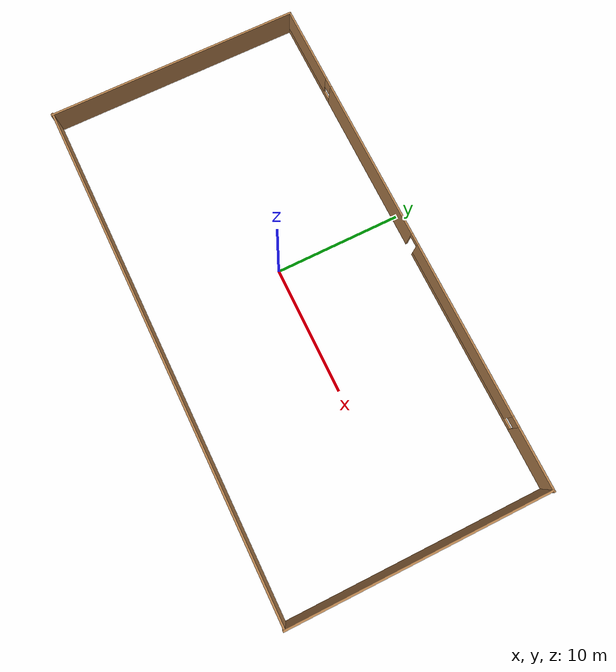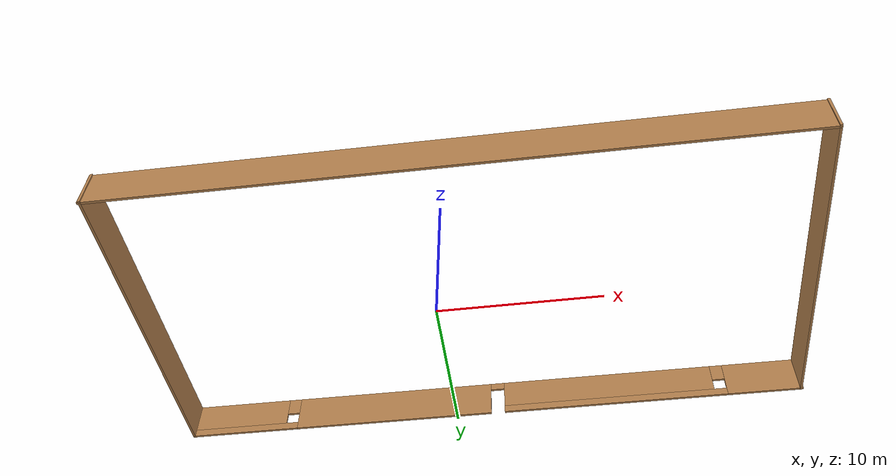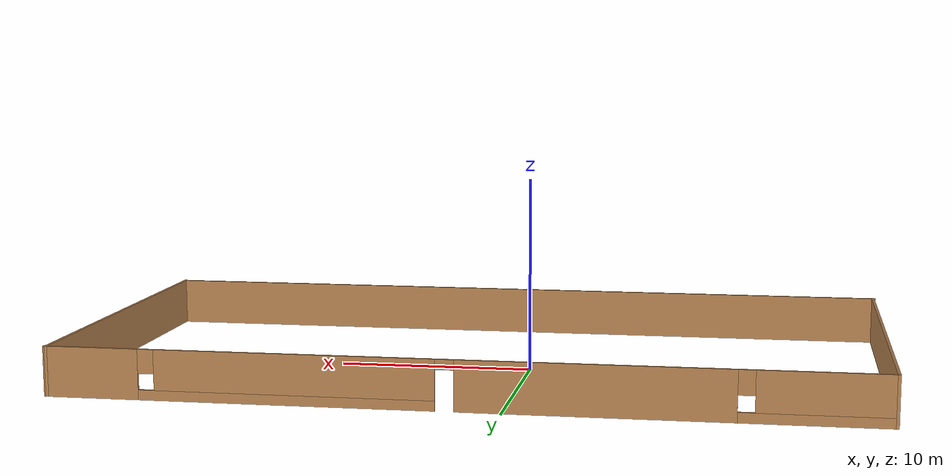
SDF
<?xml version='1.0'?>
<sdf version='1.6'>
  <model name='WoodenRoom'>
    <pose frame=''>2.16871 -0.351448 0 0 -0 0</pose>
    <link name='Wall_21'>
      <collision name='Wall_21_Collision'>
        <geometry>
          <box>
            <size>20.2938 0.15 2.5</size>
          </box>
        </geometry>
        <pose frame=''>0 0 1.25 0 -0 0</pose>
      </collision>
      <visual name='Wall_21_Visual'>
        <pose frame=''>0 0 1.25 0 -0 0</pose>
        <geometry>
          <box>
            <size>20.2938 0.15 2.5</size>
          </box>
        </geometry>
        <material>
          <script>
            <uri>file://media/materials/scripts/gazebo.material</uri>
            <name>Gazebo/Wood</name>
          </script>
          <ambient>1 1 1 1</ambient>
        </material>
        <meta>
          <layer>0</layer>
        </meta>
      </visual>
      <pose frame=''>-20.2326 -0.000253 0 0 -0 -1.5708</pose>
    </link>
    <link name='Wall_22'>
      <collision name='Wall_22_Collision'>
        <geometry>
          <box>
            <size>40.6151 0.15 2.5</size>
          </box>
        </geometry>
        <pose frame=''>0 0 1.25 0 -0 0</pose>
      </collision>
      <visual name='Wall_22_Visual'>
        <pose frame=''>0 0 1.25 0 -0 0</pose>
        <geometry>
          <box>
            <size>40.6151 0.15 2.5</size>
          </box>
        </geometry>
        <material>
          <script>
            <uri>file://media/materials/scripts/gazebo.material</uri>
            <name>Gazebo/Wood</name>
          </script>
          <ambient>1 1 1 1</ambient>
        </material>
        <meta>
          <layer>0</layer>
        </meta>
      </visual>
      <pose frame=''>-0.070358 -10.0015 0 0 -0 0</pose>
    </link>
    <link name='Wall_23'>
      <collision name='Wall_23_Collision'>
        <geometry>
          <box>
            <size>20.2852 0.15 2.5</size>
          </box>
        </geometry>
        <pose frame=''>0 0 1.25 0 -0 0</pose>
      </collision>
      <visual name='Wall_23_Visual'>
        <pose frame=''>0 0 1.25 0 -0 0</pose>
        <geometry>
          <box>
            <size>20.2852 0.15 2.5</size>
          </box>
        </geometry>
        <material>
          <script>
            <uri>file://media/materials/scripts/gazebo.material</uri>
            <name>Gazebo/Wood</name>
          </script>
          <ambient>1 1 1 1</ambient>
        </material>
        <meta>
          <layer>0</layer>
        </meta>
      </visual>
      <pose frame=''>20.1974 0.004335 0 0 -0 1.5673</pose>
    </link>
    <link name='Wall_24'>
      <pose frame=''>0.070358 10.0714 0 0 -0 3.14159</pose>
      <visual name='Wall_24_Visual_0'>
        <pose frame=''>-17.9064 0 1.25 0 -0 0</pose>
        <geometry>
          <box>
            <size>4.80226 0.15 2.5</size>
          </box>
        </geometry>
        <material>
          <script>
            <uri>file://media/materials/scripts/gazebo.material</uri>
            <name>Gazebo/Wood</name>
          </script>
          <ambient>1 1 1 1</ambient>
        </material>
        <meta>
          <layer>0</layer>
        </meta>
      </visual>
      <collision name='Wall_24_Collision_0'>
        <geometry>
          <box>
            <size>4.80226 0.15 2.5</size>
          </box>
        </geometry>
        <pose frame=''>-17.9064 0 1.25 0 -0 0</pose>
      </collision>
      <visual name='Wall_24_Visual_1'>
        <pose frame=''>6.55974 0 1.25 0 -0 0</pose>
        <geometry>
          <box>
            <size>13.1746 0.15 2.5</size>
          </box>
        </geometry>
        <material>
          <script>
            <uri>file://media/materials/scripts/gazebo.material</uri>
            <name>Gazebo/Wood</name>
          </script>
          <ambient>1 1 1 1</ambient>
        </material>
        <meta>
          <layer>0</layer>
        </meta>
      </visual>
      <collision name='Wall_24_Collision_1'>
        <geometry>
          <box>
            <size>13.1746 0.15 2.5</size>
          </box>
        </geometry>
        <pose frame=''>6.55974 0 1.25 0 -0 0</pose>
      </collision>
      <visual name='Wall_24_Visual_2'>
        <pose frame=''>-8.21642 0 0.25 0 -0 0</pose>
        <geometry>
          <box>
            <size>14.5778 0.15 0.5</size>
          </box>
        </geometry>
        <material>
          <script>
            <uri>file://media/materials/scripts/gazebo.material</uri>
            <name>Gazebo/Wood</name>
          </script>
          <ambient>1 1 1 1</ambient>
        </material>
        <meta>
          <layer>0</layer>
        </meta>
      </visual>
      <collision name='Wall_24_Collision_2'>
        <geometry>
          <box>
            <size>14.5778 0.15 0.5</size>
          </box>
        </geometry>
        <pose frame=''>-8.21642 0 0.25 0 -0 0</pose>
      </collision>
      <visual name='Wall_24_Visual_3'>
        <pose frame=''>16.7273 0 0.25 0 -0 0</pose>
        <geometry>
          <box>
            <size>7.16054 0.15 0.5</size>
          </box>
        </geometry>
        <material>
          <script>
            <uri>file://media/materials/scripts/gazebo.material</uri>
            <name>Gazebo/Wood</name>
          </script>
          <ambient>1 1 1 1</ambient>
        </material>
        <meta>
          <layer>0</layer>
        </meta>
      </visual>
      <collision name='Wall_24_Collision_3'>
        <geometry>
          <box>
            <size>7.16054 0.15 0.5</size>
          </box>
        </geometry>
        <pose frame=''>16.7273 0 0.25 0 -0 0</pose>
      </collision>
      <visual name='Wall_24_Visual_4'>
        <pose frame=''>-7.81642 0 1.5 0 -0 0</pose>
        <geometry>
          <box>
            <size>13.7778 0.15 2</size>
          </box>
        </geometry>
        <material>
          <script>
            <uri>file://media/materials/scripts/gazebo.material</uri>
            <name>Gazebo/Wood</name>
          </script>
          <ambient>1 1 1 1</ambient>
        </material>
        <meta>
          <layer>0</layer>
        </meta>
      </visual>
      <collision name='Wall_24_Collision_4'>
        <geometry>
          <box>
            <size>13.7778 0.15 2</size>
          </box>
        </geometry>
        <pose frame=''>-7.81642 0 1.5 0 -0 0</pose>
      </collision>
      <visual name='Wall_24_Visual_5'>
        <pose frame=''>-7.81642 0 1.5 0 -0 0</pose>
        <geometry>
          <box>
            <size>13.7778 0.15 2</size>
          </box>
        </geometry>
        <material>
          <script>
            <uri>file://media/materials/scripts/gazebo.material</uri>
            <name>Gazebo/Wood</name>
          </script>
          <ambient>1 1 1 1</ambient>
        </material>
        <meta>
          <layer>0</layer>
        </meta>
      </visual>
      <collision name='Wall_24_Collision_5'>
        <geometry>
          <box>
            <size>13.7778 0.15 2</size>
          </box>
        </geometry>
        <pose frame=''>-7.81642 0 1.5 0 -0 0</pose>
      </collision>
      <visual name='Wall_24_Visual_6'>
        <pose frame=''>17.1273 0 1.5 0 -0 0</pose>
        <geometry>
          <box>
            <size>6.36054 0.15 2</size>
          </box>
        </geometry>
        <material>
          <script>
            <uri>file://media/materials/scripts/gazebo.material</uri>
            <name>Gazebo/Wood</name>
          </script>
          <ambient>1 1 1 1</ambient>
        </material>
        <meta>
          <layer>0</layer>
        </meta>
      </visual>
      <collision name='Wall_24_Collision_6'>
        <geometry>
          <box>
            <size>6.36054 0.15 2</size>
          </box>
        </geometry>
        <pose frame=''>17.1273 0 1.5 0 -0 0</pose>
      </collision>
      <visual name='Wall_24_Visual_7'>
        <pose frame=''>-15.1053 0 1.9 0 -0 0</pose>
        <geometry>
          <box>
            <size>0.8 0.15 1.2</size>
          </box>
        </geometry>
        <material>
          <script>
            <uri>file://media/materials/scripts/gazebo.material</uri>
            <name>Gazebo/Wood</name>
          </script>
          <ambient>1 1 1 1</ambient>
        </material>
        <meta>
          <layer>0</layer>
        </meta>
      </visual>
      <collision name='Wall_24_Collision_7'>
        <geometry>
          <box>
            <size>0.8 0.15 1.2</size>
          </box>
        </geometry>
        <pose frame=''>-15.1053 0 1.9 0 -0 0</pose>
      </collision>
      <visual name='Wall_24_Visual_8'>
        <pose frame=''>13.547 0 1.9 0 -0 0</pose>
        <geometry>
          <box>
            <size>0.8 0.15 1.2</size>
          </box>
        </geometry>
        <material>
          <script>
            <uri>file://media/materials/scripts/gazebo.material</uri>
            <name>Gazebo/Wood</name>
          </script>
          <ambient>1 1 1 1</ambient>
        </material>
        <meta>
          <layer>0</layer>
        </meta>
      </visual>
      <collision name='Wall_24_Collision_8'>
        <geometry>
          <box>
            <size>0.8 0.15 1.2</size>
          </box>
        </geometry>
        <pose frame=''>13.547 0 1.9 0 -0 0</pose>
      </collision>
      <visual name='Wall_24_Visual_9'>
        <pose frame=''>-0.477539 0 2.25 0 -0 0</pose>
        <geometry>
          <box>
            <size>0.9 0.15 0.5</size>
          </box>
        </geometry>
        <material>
          <script>
            <uri>file://media/materials/scripts/gazebo.material</uri>
            <name>Gazebo/Wood</name>
          </script>
          <ambient>1 1 1 1</ambient>
        </material>
        <meta>
          <layer>0</layer>
        </meta>
      </visual>
      <collision name='Wall_24_Collision_9'>
        <geometry>
          <box>
            <size>0.9 0.15 0.5</size>
          </box>
        </geometry>
        <pose frame=''>-0.477539 0 2.25 0 -0 0</pose>
      </collision>
      <visual name='Wall_24_Visual_10'>
        <pose frame=''>-0.477539 0 2.25 0 -0 0</pose>
        <geometry>
          <box>
            <size>0.9 0.15 0.5</size>
          </box>
        </geometry>
        <material>
          <script>
            <uri>file://media/materials/scripts/gazebo.material</uri>
            <name>Gazebo/Wood</name>
          </script>
          <ambient>1 1 1 1</ambient>
        </material>
        <meta>
          <layer>0</layer>
        </meta>
      </visual>
      <collision name='Wall_24_Collision_10'>
        <geometry>
          <box>
            <size>0.9 0.15 0.5</size>
          </box>
        </geometry>
        <pose frame=''>-0.477539 0 2.25 0 -0 0</pose>
      </collision>
    </link>
    <static>1</static>
  </model>
</sdf>
